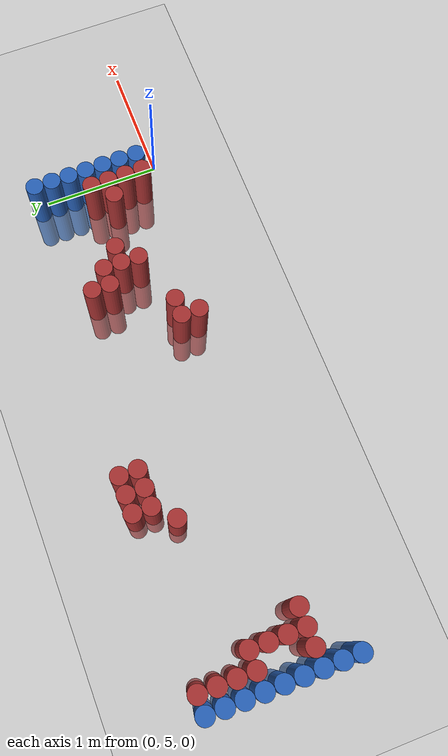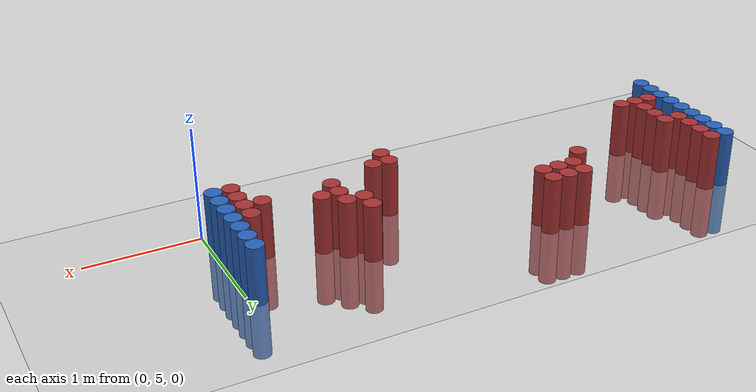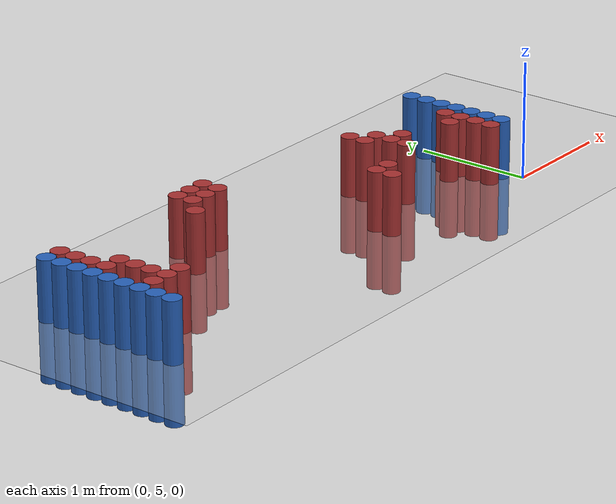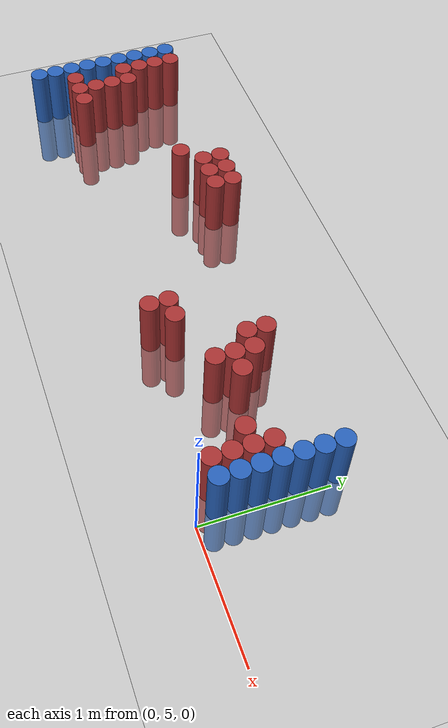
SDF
<sdf version="1.6">
 <world name="default">
  <model name="ground_plane">
   <static>1</static>
   <link name="link">
    <collision name="collision">
     <geometry><plane><normal>0 0 1</normal><size>100 100</size></plane></geometry>
     <surface><friction><ode><mu>100</mu><mu2>50</mu2></ode></friction></surface>
    </collision>
    <visual name="visual">
     <cast_shadows>0</cast_shadows>
     <geometry><plane><normal>0 0 1</normal><size>100 100</size></plane></geometry>
     <material>
      <script><uri>file://media/materials/scripts/gazebo.material</uri><name>Gazebo/Grey</name></script>
     </material>
    </visual>
   </link>
  </model>
  <model name="unit_cylinder_95">
   <static>1</static>
   <pose>-4.425000 5.025000 0.000000 0.000000 0.000000 0.000000</pose>
   <link name="link">
    <inertial>
     <mass>1</mass>
     <inertia><ixx>0.145833</ixx><ixy>0</ixy><ixz>0</ixz><iyy>0.145833</iyy><iyz>0</iyz><izz>0.125</izz></inertia>
    </inertial>
    <collision name="collision">
     <geometry><cylinder><radius>0.075000</radius><length>1</length></cylinder></geometry>
    </collision>
    <visual name="visual">
     <geometry><cylinder><radius>0.075000</radius><length>1</length></cylinder></geometry>
     <material>
      <ambient>0.152000 0.379000 0.720000 1</ambient>
      <diffuse>0.152000 0.379000 0.720000 1</diffuse>
     </material>
     <material>
      <script><name>Gazebo/Grey</name><uri>file://media/materials/scripts/gazebo.material</uri></script>
     </material>
    </visual>
   </link>
  </model>
  <model name="unit_cylinder_96">
   <static>1</static>
   <pose>-4.425000 5.175000 0.000000 0.000000 0.000000 0.000000</pose>
   <link name="link">
    <inertial>
     <mass>1</mass>
     <inertia><ixx>0.145833</ixx><ixy>0</ixy><ixz>0</ixz><iyy>0.145833</iyy><iyz>0</iyz><izz>0.125</izz></inertia>
    </inertial>
    <collision name="collision">
     <geometry><cylinder><radius>0.075000</radius><length>1</length></cylinder></geometry>
    </collision>
    <visual name="visual">
     <geometry><cylinder><radius>0.075000</radius><length>1</length></cylinder></geometry>
     <material>
      <ambient>0.152000 0.379000 0.720000 1</ambient>
      <diffuse>0.152000 0.379000 0.720000 1</diffuse>
     </material>
     <material>
      <script><name>Gazebo/Grey</name><uri>file://media/materials/scripts/gazebo.material</uri></script>
     </material>
    </visual>
   </link>
  </model>
  <model name="unit_cylinder_97">
   <static>1</static>
   <pose>-4.425000 5.325000 0.000000 0.000000 0.000000 0.000000</pose>
   <link name="link">
    <inertial>
     <mass>1</mass>
     <inertia><ixx>0.145833</ixx><ixy>0</ixy><ixz>0</ixz><iyy>0.145833</iyy><iyz>0</iyz><izz>0.125</izz></inertia>
    </inertial>
    <collision name="collision">
     <geometry><cylinder><radius>0.075000</radius><length>1</length></cylinder></geometry>
    </collision>
    <visual name="visual">
     <geometry><cylinder><radius>0.075000</radius><length>1</length></cylinder></geometry>
     <material>
      <ambient>0.152000 0.379000 0.720000 1</ambient>
      <diffuse>0.152000 0.379000 0.720000 1</diffuse>
     </material>
     <material>
      <script><name>Gazebo/Grey</name><uri>file://media/materials/scripts/gazebo.material</uri></script>
     </material>
    </visual>
   </link>
  </model>
  <model name="unit_cylinder_98">
   <static>1</static>
   <pose>-4.425000 5.475000 0.000000 0.000000 0.000000 0.000000</pose>
   <link name="link">
    <inertial>
     <mass>1</mass>
     <inertia><ixx>0.145833</ixx><ixy>0</ixy><ixz>0</ixz><iyy>0.145833</iyy><iyz>0</iyz><izz>0.125</izz></inertia>
    </inertial>
    <collision name="collision">
     <geometry><cylinder><radius>0.075000</radius><length>1</length></cylinder></geometry>
    </collision>
    <visual name="visual">
     <geometry><cylinder><radius>0.075000</radius><length>1</length></cylinder></geometry>
     <material>
      <ambient>0.152000 0.379000 0.720000 1</ambient>
      <diffuse>0.152000 0.379000 0.720000 1</diffuse>
     </material>
     <material>
      <script><name>Gazebo/Grey</name><uri>file://media/materials/scripts/gazebo.material</uri></script>
     </material>
    </visual>
   </link>
  </model>
  <model name="unit_cylinder_99">
   <static>1</static>
   <pose>-4.425000 5.625000 0.000000 0.000000 0.000000 0.000000</pose>
   <link name="link">
    <inertial>
     <mass>1</mass>
     <inertia><ixx>0.145833</ixx><ixy>0</ixy><ixz>0</ixz><iyy>0.145833</iyy><iyz>0</iyz><izz>0.125</izz></inertia>
    </inertial>
    <collision name="collision">
     <geometry><cylinder><radius>0.075000</radius><length>1</length></cylinder></geometry>
    </collision>
    <visual name="visual">
     <geometry><cylinder><radius>0.075000</radius><length>1</length></cylinder></geometry>
     <material>
      <ambient>0.152000 0.379000 0.720000 1</ambient>
      <diffuse>0.152000 0.379000 0.720000 1</diffuse>
     </material>
     <material>
      <script><name>Gazebo/Grey</name><uri>file://media/materials/scripts/gazebo.material</uri></script>
     </material>
    </visual>
   </link>
  </model>
  <model name="unit_cylinder_100">
   <static>1</static>
   <pose>-4.425000 5.775000 0.000000 0.000000 0.000000 0.000000</pose>
   <link name="link">
    <inertial>
     <mass>1</mass>
     <inertia><ixx>0.145833</ixx><ixy>0</ixy><ixz>0</ixz><iyy>0.145833</iyy><iyz>0</iyz><izz>0.125</izz></inertia>
    </inertial>
    <collision name="collision">
     <geometry><cylinder><radius>0.075000</radius><length>1</length></cylinder></geometry>
    </collision>
    <visual name="visual">
     <geometry><cylinder><radius>0.075000</radius><length>1</length></cylinder></geometry>
     <material>
      <ambient>0.152000 0.379000 0.720000 1</ambient>
      <diffuse>0.152000 0.379000 0.720000 1</diffuse>
     </material>
     <material>
      <script><name>Gazebo/Grey</name><uri>file://media/materials/scripts/gazebo.material</uri></script>
     </material>
    </visual>
   </link>
  </model>
  <model name="unit_cylinder_101">
   <static>1</static>
   <pose>-4.425000 5.925000 0.000000 0.000000 0.000000 0.000000</pose>
   <link name="link">
    <inertial>
     <mass>1</mass>
     <inertia><ixx>0.145833</ixx><ixy>0</ixy><ixz>0</ixz><iyy>0.145833</iyy><iyz>0</iyz><izz>0.125</izz></inertia>
    </inertial>
    <collision name="collision">
     <geometry><cylinder><radius>0.075000</radius><length>1</length></cylinder></geometry>
    </collision>
    <visual name="visual">
     <geometry><cylinder><radius>0.075000</radius><length>1</length></cylinder></geometry>
     <material>
      <ambient>0.152000 0.379000 0.720000 1</ambient>
      <diffuse>0.152000 0.379000 0.720000 1</diffuse>
     </material>
     <material>
      <script><name>Gazebo/Grey</name><uri>file://media/materials/scripts/gazebo.material</uri></script>
     </material>
    </visual>
   </link>
  </model>
  <model name="unit_cylinder_102">
   <static>1</static>
   <pose>-4.425000 6.075000 0.000000 0.000000 0.000000 0.000000</pose>
   <link name="link">
    <inertial>
     <mass>1</mass>
     <inertia><ixx>0.145833</ixx><ixy>0</ixy><ixz>0</ixz><iyy>0.145833</iyy><iyz>0</iyz><izz>0.125</izz></inertia>
    </inertial>
    <collision name="collision">
     <geometry><cylinder><radius>0.075000</radius><length>1</length></cylinder></geometry>
    </collision>
    <visual name="visual">
     <geometry><cylinder><radius>0.075000</radius><length>1</length></cylinder></geometry>
     <material>
      <ambient>0.152000 0.379000 0.720000 1</ambient>
      <diffuse>0.152000 0.379000 0.720000 1</diffuse>
     </material>
     <material>
      <script><name>Gazebo/Grey</name><uri>file://media/materials/scripts/gazebo.material</uri></script>
     </material>
    </visual>
   </link>
  </model>
  <model name="unit_cylinder_103">
   <static>1</static>
   <pose>-4.425000 6.225000 0.000000 0.000000 0.000000 0.000000</pose>
   <link name="link">
    <inertial>
     <mass>1</mass>
     <inertia><ixx>0.145833</ixx><ixy>0</ixy><ixz>0</ixz><iyy>0.145833</iyy><iyz>0</iyz><izz>0.125</izz></inertia>
    </inertial>
    <collision name="collision">
     <geometry><cylinder><radius>0.075000</radius><length>1</length></cylinder></geometry>
    </collision>
    <visual name="visual">
     <geometry><cylinder><radius>0.075000</radius><length>1</length></cylinder></geometry>
     <material>
      <ambient>0.152000 0.379000 0.720000 1</ambient>
      <diffuse>0.152000 0.379000 0.720000 1</diffuse>
     </material>
     <material>
      <script><name>Gazebo/Grey</name><uri>file://media/materials/scripts/gazebo.material</uri></script>
     </material>
    </visual>
   </link>
  </model>
  <model name="unit_cylinder_126">
   <static>1</static>
   <pose>-4.275000 5.325000 0.000000 0.000000 0.000000 0.000000</pose>
   <link name="link">
    <inertial>
     <mass>1</mass>
     <inertia><ixx>0.145833</ixx><ixy>0</ixy><ixz>0</ixz><iyy>0.145833</iyy><iyz>0</iyz><izz>0.125</izz></inertia>
    </inertial>
    <collision name="collision">
     <geometry><cylinder><radius>0.075000</radius><length>1</length></cylinder></geometry>
    </collision>
    <visual name="visual">
     <geometry><cylinder><radius>0.075000</radius><length>1</length></cylinder></geometry>
     <material>
      <ambient>0.648000 0.192000 0.192000 1</ambient>
      <diffuse>0.648000 0.192000 0.192000 1</diffuse>
     </material>
     <material>
      <script><name>Gazebo/Grey</name><uri>file://media/materials/scripts/gazebo.material</uri></script>
     </material>
    </visual>
   </link>
  </model>
  <model name="unit_cylinder_127">
   <static>1</static>
   <pose>-4.275000 5.775000 0.000000 0.000000 0.000000 0.000000</pose>
   <link name="link">
    <inertial>
     <mass>1</mass>
     <inertia><ixx>0.145833</ixx><ixy>0</ixy><ixz>0</ixz><iyy>0.145833</iyy><iyz>0</iyz><izz>0.125</izz></inertia>
    </inertial>
    <collision name="collision">
     <geometry><cylinder><radius>0.075000</radius><length>1</length></cylinder></geometry>
    </collision>
    <visual name="visual">
     <geometry><cylinder><radius>0.075000</radius><length>1</length></cylinder></geometry>
     <material>
      <ambient>0.648000 0.192000 0.192000 1</ambient>
      <diffuse>0.648000 0.192000 0.192000 1</diffuse>
     </material>
     <material>
      <script><name>Gazebo/Grey</name><uri>file://media/materials/scripts/gazebo.material</uri></script>
     </material>
    </visual>
   </link>
  </model>
  <model name="unit_cylinder_128">
   <static>1</static>
   <pose>-4.275000 5.925000 0.000000 0.000000 0.000000 0.000000</pose>
   <link name="link">
    <inertial>
     <mass>1</mass>
     <inertia><ixx>0.145833</ixx><ixy>0</ixy><ixz>0</ixz><iyy>0.145833</iyy><iyz>0</iyz><izz>0.125</izz></inertia>
    </inertial>
    <collision name="collision">
     <geometry><cylinder><radius>0.075000</radius><length>1</length></cylinder></geometry>
    </collision>
    <visual name="visual">
     <geometry><cylinder><radius>0.075000</radius><length>1</length></cylinder></geometry>
     <material>
      <ambient>0.648000 0.192000 0.192000 1</ambient>
      <diffuse>0.648000 0.192000 0.192000 1</diffuse>
     </material>
     <material>
      <script><name>Gazebo/Grey</name><uri>file://media/materials/scripts/gazebo.material</uri></script>
     </material>
    </visual>
   </link>
  </model>
  <model name="unit_cylinder_129">
   <static>1</static>
   <pose>-4.275000 6.075000 0.000000 0.000000 0.000000 0.000000</pose>
   <link name="link">
    <inertial>
     <mass>1</mass>
     <inertia><ixx>0.145833</ixx><ixy>0</ixy><ixz>0</ixz><iyy>0.145833</iyy><iyz>0</iyz><izz>0.125</izz></inertia>
    </inertial>
    <collision name="collision">
     <geometry><cylinder><radius>0.075000</radius><length>1</length></cylinder></geometry>
    </collision>
    <visual name="visual">
     <geometry><cylinder><radius>0.075000</radius><length>1</length></cylinder></geometry>
     <material>
      <ambient>0.648000 0.192000 0.192000 1</ambient>
      <diffuse>0.648000 0.192000 0.192000 1</diffuse>
     </material>
     <material>
      <script><name>Gazebo/Grey</name><uri>file://media/materials/scripts/gazebo.material</uri></script>
     </material>
    </visual>
   </link>
  </model>
  <model name="unit_cylinder_130">
   <static>1</static>
   <pose>-4.275000 6.225000 0.000000 0.000000 0.000000 0.000000</pose>
   <link name="link">
    <inertial>
     <mass>1</mass>
     <inertia><ixx>0.145833</ixx><ixy>0</ixy><ixz>0</ixz><iyy>0.145833</iyy><iyz>0</iyz><izz>0.125</izz></inertia>
    </inertial>
    <collision name="collision">
     <geometry><cylinder><radius>0.075000</radius><length>1</length></cylinder></geometry>
    </collision>
    <visual name="visual">
     <geometry><cylinder><radius>0.075000</radius><length>1</length></cylinder></geometry>
     <material>
      <ambient>0.648000 0.192000 0.192000 1</ambient>
      <diffuse>0.648000 0.192000 0.192000 1</diffuse>
     </material>
     <material>
      <script><name>Gazebo/Grey</name><uri>file://media/materials/scripts/gazebo.material</uri></script>
     </material>
    </visual>
   </link>
  </model>
  <model name="unit_cylinder_149">
   <static>1</static>
   <pose>-4.125000 5.325000 0.000000 0.000000 0.000000 0.000000</pose>
   <link name="link">
    <inertial>
     <mass>1</mass>
     <inertia><ixx>0.145833</ixx><ixy>0</ixy><ixz>0</ixz><iyy>0.145833</iyy><iyz>0</iyz><izz>0.125</izz></inertia>
    </inertial>
    <collision name="collision">
     <geometry><cylinder><radius>0.075000</radius><length>1</length></cylinder></geometry>
    </collision>
    <visual name="visual">
     <geometry><cylinder><radius>0.075000</radius><length>1</length></cylinder></geometry>
     <material>
      <ambient>0.648000 0.192000 0.192000 1</ambient>
      <diffuse>0.648000 0.192000 0.192000 1</diffuse>
     </material>
     <material>
      <script><name>Gazebo/Grey</name><uri>file://media/materials/scripts/gazebo.material</uri></script>
     </material>
    </visual>
   </link>
  </model>
  <model name="unit_cylinder_150">
   <static>1</static>
   <pose>-4.125000 5.475000 0.000000 0.000000 0.000000 0.000000</pose>
   <link name="link">
    <inertial>
     <mass>1</mass>
     <inertia><ixx>0.145833</ixx><ixy>0</ixy><ixz>0</ixz><iyy>0.145833</iyy><iyz>0</iyz><izz>0.125</izz></inertia>
    </inertial>
    <collision name="collision">
     <geometry><cylinder><radius>0.075000</radius><length>1</length></cylinder></geometry>
    </collision>
    <visual name="visual">
     <geometry><cylinder><radius>0.075000</radius><length>1</length></cylinder></geometry>
     <material>
      <ambient>0.648000 0.192000 0.192000 1</ambient>
      <diffuse>0.648000 0.192000 0.192000 1</diffuse>
     </material>
     <material>
      <script><name>Gazebo/Grey</name><uri>file://media/materials/scripts/gazebo.material</uri></script>
     </material>
    </visual>
   </link>
  </model>
  <model name="unit_cylinder_151">
   <static>1</static>
   <pose>-4.125000 5.625000 0.000000 0.000000 0.000000 0.000000</pose>
   <link name="link">
    <inertial>
     <mass>1</mass>
     <inertia><ixx>0.145833</ixx><ixy>0</ixy><ixz>0</ixz><iyy>0.145833</iyy><iyz>0</iyz><izz>0.125</izz></inertia>
    </inertial>
    <collision name="collision">
     <geometry><cylinder><radius>0.075000</radius><length>1</length></cylinder></geometry>
    </collision>
    <visual name="visual">
     <geometry><cylinder><radius>0.075000</radius><length>1</length></cylinder></geometry>
     <material>
      <ambient>0.648000 0.192000 0.192000 1</ambient>
      <diffuse>0.648000 0.192000 0.192000 1</diffuse>
     </material>
     <material>
      <script><name>Gazebo/Grey</name><uri>file://media/materials/scripts/gazebo.material</uri></script>
     </material>
    </visual>
   </link>
  </model>
  <model name="unit_cylinder_152">
   <static>1</static>
   <pose>-4.125000 5.775000 0.000000 0.000000 0.000000 0.000000</pose>
   <link name="link">
    <inertial>
     <mass>1</mass>
     <inertia><ixx>0.145833</ixx><ixy>0</ixy><ixz>0</ixz><iyy>0.145833</iyy><iyz>0</iyz><izz>0.125</izz></inertia>
    </inertial>
    <collision name="collision">
     <geometry><cylinder><radius>0.075000</radius><length>1</length></cylinder></geometry>
    </collision>
    <visual name="visual">
     <geometry><cylinder><radius>0.075000</radius><length>1</length></cylinder></geometry>
     <material>
      <ambient>0.648000 0.192000 0.192000 1</ambient>
      <diffuse>0.648000 0.192000 0.192000 1</diffuse>
     </material>
     <material>
      <script><name>Gazebo/Grey</name><uri>file://media/materials/scripts/gazebo.material</uri></script>
     </material>
    </visual>
   </link>
  </model>
  <model name="unit_cylinder_156">
   <static>1</static>
   <pose>-3.975000 5.325000 0.000000 0.000000 0.000000 0.000000</pose>
   <link name="link">
    <inertial>
     <mass>1</mass>
     <inertia><ixx>0.145833</ixx><ixy>0</ixy><ixz>0</ixz><iyy>0.145833</iyy><iyz>0</iyz><izz>0.125</izz></inertia>
    </inertial>
    <collision name="collision">
     <geometry><cylinder><radius>0.075000</radius><length>1</length></cylinder></geometry>
    </collision>
    <visual name="visual">
     <geometry><cylinder><radius>0.075000</radius><length>1</length></cylinder></geometry>
     <material>
      <ambient>0.648000 0.192000 0.192000 1</ambient>
      <diffuse>0.648000 0.192000 0.192000 1</diffuse>
     </material>
     <material>
      <script><name>Gazebo/Grey</name><uri>file://media/materials/scripts/gazebo.material</uri></script>
     </material>
    </visual>
   </link>
  </model>
  <model name="unit_cylinder_168">
   <static>1</static>
   <pose>-3.075000 5.925000 0.000000 0.000000 0.000000 0.000000</pose>
   <link name="link">
    <inertial>
     <mass>1</mass>
     <inertia><ixx>0.145833</ixx><ixy>0</ixy><ixz>0</ixz><iyy>0.145833</iyy><iyz>0</iyz><izz>0.125</izz></inertia>
    </inertial>
    <collision name="collision">
     <geometry><cylinder><radius>0.075000</radius><length>1</length></cylinder></geometry>
    </collision>
    <visual name="visual">
     <geometry><cylinder><radius>0.075000</radius><length>1</length></cylinder></geometry>
     <material>
      <ambient>0.648000 0.192000 0.192000 1</ambient>
      <diffuse>0.648000 0.192000 0.192000 1</diffuse>
     </material>
     <material>
      <script><name>Gazebo/Grey</name><uri>file://media/materials/scripts/gazebo.material</uri></script>
     </material>
    </visual>
   </link>
  </model>
  <model name="unit_cylinder_173">
   <static>1</static>
   <pose>-2.925000 6.075000 0.000000 0.000000 0.000000 0.000000</pose>
   <link name="link">
    <inertial>
     <mass>1</mass>
     <inertia><ixx>0.145833</ixx><ixy>0</ixy><ixz>0</ixz><iyy>0.145833</iyy><iyz>0</iyz><izz>0.125</izz></inertia>
    </inertial>
    <collision name="collision">
     <geometry><cylinder><radius>0.075000</radius><length>1</length></cylinder></geometry>
    </collision>
    <visual name="visual">
     <geometry><cylinder><radius>0.075000</radius><length>1</length></cylinder></geometry>
     <material>
      <ambient>0.648000 0.192000 0.192000 1</ambient>
      <diffuse>0.648000 0.192000 0.192000 1</diffuse>
     </material>
     <material>
      <script><name>Gazebo/Grey</name><uri>file://media/materials/scripts/gazebo.material</uri></script>
     </material>
    </visual>
   </link>
  </model>
  <model name="unit_cylinder_174">
   <static>1</static>
   <pose>-2.925000 6.225000 0.000000 0.000000 0.000000 0.000000</pose>
   <link name="link">
    <inertial>
     <mass>1</mass>
     <inertia><ixx>0.145833</ixx><ixy>0</ixy><ixz>0</ixz><iyy>0.145833</iyy><iyz>0</iyz><izz>0.125</izz></inertia>
    </inertial>
    <collision name="collision">
     <geometry><cylinder><radius>0.075000</radius><length>1</length></cylinder></geometry>
    </collision>
    <visual name="visual">
     <geometry><cylinder><radius>0.075000</radius><length>1</length></cylinder></geometry>
     <material>
      <ambient>0.648000 0.192000 0.192000 1</ambient>
      <diffuse>0.648000 0.192000 0.192000 1</diffuse>
     </material>
     <material>
      <script><name>Gazebo/Grey</name><uri>file://media/materials/scripts/gazebo.material</uri></script>
     </material>
    </visual>
   </link>
  </model>
  <model name="unit_cylinder_178">
   <static>1</static>
   <pose>-2.775000 6.075000 0.000000 0.000000 0.000000 0.000000</pose>
   <link name="link">
    <inertial>
     <mass>1</mass>
     <inertia><ixx>0.145833</ixx><ixy>0</ixy><ixz>0</ixz><iyy>0.145833</iyy><iyz>0</iyz><izz>0.125</izz></inertia>
    </inertial>
    <collision name="collision">
     <geometry><cylinder><radius>0.075000</radius><length>1</length></cylinder></geometry>
    </collision>
    <visual name="visual">
     <geometry><cylinder><radius>0.075000</radius><length>1</length></cylinder></geometry>
     <material>
      <ambient>0.648000 0.192000 0.192000 1</ambient>
      <diffuse>0.648000 0.192000 0.192000 1</diffuse>
     </material>
     <material>
      <script><name>Gazebo/Grey</name><uri>file://media/materials/scripts/gazebo.material</uri></script>
     </material>
    </visual>
   </link>
  </model>
  <model name="unit_cylinder_179">
   <static>1</static>
   <pose>-2.775000 6.225000 0.000000 0.000000 0.000000 0.000000</pose>
   <link name="link">
    <inertial>
     <mass>1</mass>
     <inertia><ixx>0.145833</ixx><ixy>0</ixy><ixz>0</ixz><iyy>0.145833</iyy><iyz>0</iyz><izz>0.125</izz></inertia>
    </inertial>
    <collision name="collision">
     <geometry><cylinder><radius>0.075000</radius><length>1</length></cylinder></geometry>
    </collision>
    <visual name="visual">
     <geometry><cylinder><radius>0.075000</radius><length>1</length></cylinder></geometry>
     <material>
      <ambient>0.648000 0.192000 0.192000 1</ambient>
      <diffuse>0.648000 0.192000 0.192000 1</diffuse>
     </material>
     <material>
      <script><name>Gazebo/Grey</name><uri>file://media/materials/scripts/gazebo.material</uri></script>
     </material>
    </visual>
   </link>
  </model>
  <model name="unit_cylinder_186">
   <static>1</static>
   <pose>-2.625000 6.075000 0.000000 0.000000 0.000000 0.000000</pose>
   <link name="link">
    <inertial>
     <mass>1</mass>
     <inertia><ixx>0.145833</ixx><ixy>0</ixy><ixz>0</ixz><iyy>0.145833</iyy><iyz>0</iyz><izz>0.125</izz></inertia>
    </inertial>
    <collision name="collision">
     <geometry><cylinder><radius>0.075000</radius><length>1</length></cylinder></geometry>
    </collision>
    <visual name="visual">
     <geometry><cylinder><radius>0.075000</radius><length>1</length></cylinder></geometry>
     <material>
      <ambient>0.648000 0.192000 0.192000 1</ambient>
      <diffuse>0.648000 0.192000 0.192000 1</diffuse>
     </material>
     <material>
      <script><name>Gazebo/Grey</name><uri>file://media/materials/scripts/gazebo.material</uri></script>
     </material>
    </visual>
   </link>
  </model>
  <model name="unit_cylinder_187">
   <static>1</static>
   <pose>-2.625000 6.225000 0.000000 0.000000 0.000000 0.000000</pose>
   <link name="link">
    <inertial>
     <mass>1</mass>
     <inertia><ixx>0.145833</ixx><ixy>0</ixy><ixz>0</ixz><iyy>0.145833</iyy><iyz>0</iyz><izz>0.125</izz></inertia>
    </inertial>
    <collision name="collision">
     <geometry><cylinder><radius>0.075000</radius><length>1</length></cylinder></geometry>
    </collision>
    <visual name="visual">
     <geometry><cylinder><radius>0.075000</radius><length>1</length></cylinder></geometry>
     <material>
      <ambient>0.648000 0.192000 0.192000 1</ambient>
      <diffuse>0.648000 0.192000 0.192000 1</diffuse>
     </material>
     <material>
      <script><name>Gazebo/Grey</name><uri>file://media/materials/scripts/gazebo.material</uri></script>
     </material>
    </visual>
   </link>
  </model>
  <model name="unit_cylinder_211">
   <static>1</static>
   <pose>-1.575000 5.175000 0.000000 0.000000 0.000000 0.000000</pose>
   <link name="link">
    <inertial>
     <mass>1</mass>
     <inertia><ixx>0.145833</ixx><ixy>0</ixy><ixz>0</ixz><iyy>0.145833</iyy><iyz>0</iyz><izz>0.125</izz></inertia>
    </inertial>
    <collision name="collision">
     <geometry><cylinder><radius>0.075000</radius><length>1</length></cylinder></geometry>
    </collision>
    <visual name="visual">
     <geometry><cylinder><radius>0.075000</radius><length>1</length></cylinder></geometry>
     <material>
      <ambient>0.648000 0.192000 0.192000 1</ambient>
      <diffuse>0.648000 0.192000 0.192000 1</diffuse>
     </material>
     <material>
      <script><name>Gazebo/Grey</name><uri>file://media/materials/scripts/gazebo.material</uri></script>
     </material>
    </visual>
   </link>
  </model>
  <model name="unit_cylinder_212">
   <static>1</static>
   <pose>-1.575000 5.325000 0.000000 0.000000 0.000000 0.000000</pose>
   <link name="link">
    <inertial>
     <mass>1</mass>
     <inertia><ixx>0.145833</ixx><ixy>0</ixy><ixz>0</ixz><iyy>0.145833</iyy><iyz>0</iyz><izz>0.125</izz></inertia>
    </inertial>
    <collision name="collision">
     <geometry><cylinder><radius>0.075000</radius><length>1</length></cylinder></geometry>
    </collision>
    <visual name="visual">
     <geometry><cylinder><radius>0.075000</radius><length>1</length></cylinder></geometry>
     <material>
      <ambient>0.648000 0.192000 0.192000 1</ambient>
      <diffuse>0.648000 0.192000 0.192000 1</diffuse>
     </material>
     <material>
      <script><name>Gazebo/Grey</name><uri>file://media/materials/scripts/gazebo.material</uri></script>
     </material>
    </visual>
   </link>
  </model>
  <model name="unit_cylinder_213">
   <static>1</static>
   <pose>-1.425000 5.325000 0.000000 0.000000 0.000000 0.000000</pose>
   <link name="link">
    <inertial>
     <mass>1</mass>
     <inertia><ixx>0.145833</ixx><ixy>0</ixy><ixz>0</ixz><iyy>0.145833</iyy><iyz>0</iyz><izz>0.125</izz></inertia>
    </inertial>
    <collision name="collision">
     <geometry><cylinder><radius>0.075000</radius><length>1</length></cylinder></geometry>
    </collision>
    <visual name="visual">
     <geometry><cylinder><radius>0.075000</radius><length>1</length></cylinder></geometry>
     <material>
      <ambient>0.648000 0.192000 0.192000 1</ambient>
      <diffuse>0.648000 0.192000 0.192000 1</diffuse>
     </material>
     <material>
      <script><name>Gazebo/Grey</name><uri>file://media/materials/scripts/gazebo.material</uri></script>
     </material>
    </visual>
   </link>
  </model>
  <model name="unit_cylinder_214">
   <static>1</static>
   <pose>-1.125000 5.775000 0.000000 0.000000 0.000000 0.000000</pose>
   <link name="link">
    <inertial>
     <mass>1</mass>
     <inertia><ixx>0.145833</ixx><ixy>0</ixy><ixz>0</ixz><iyy>0.145833</iyy><iyz>0</iyz><izz>0.125</izz></inertia>
    </inertial>
    <collision name="collision">
     <geometry><cylinder><radius>0.075000</radius><length>1</length></cylinder></geometry>
    </collision>
    <visual name="visual">
     <geometry><cylinder><radius>0.075000</radius><length>1</length></cylinder></geometry>
     <material>
      <ambient>0.648000 0.192000 0.192000 1</ambient>
      <diffuse>0.648000 0.192000 0.192000 1</diffuse>
     </material>
     <material>
      <script><name>Gazebo/Grey</name><uri>file://media/materials/scripts/gazebo.material</uri></script>
     </material>
    </visual>
   </link>
  </model>
  <model name="unit_cylinder_215">
   <static>1</static>
   <pose>-1.125000 5.925000 0.000000 0.000000 0.000000 0.000000</pose>
   <link name="link">
    <inertial>
     <mass>1</mass>
     <inertia><ixx>0.145833</ixx><ixy>0</ixy><ixz>0</ixz><iyy>0.145833</iyy><iyz>0</iyz><izz>0.125</izz></inertia>
    </inertial>
    <collision name="collision">
     <geometry><cylinder><radius>0.075000</radius><length>1</length></cylinder></geometry>
    </collision>
    <visual name="visual">
     <geometry><cylinder><radius>0.075000</radius><length>1</length></cylinder></geometry>
     <material>
      <ambient>0.648000 0.192000 0.192000 1</ambient>
      <diffuse>0.648000 0.192000 0.192000 1</diffuse>
     </material>
     <material>
      <script><name>Gazebo/Grey</name><uri>file://media/materials/scripts/gazebo.material</uri></script>
     </material>
    </visual>
   </link>
  </model>
  <model name="unit_cylinder_216">
   <static>1</static>
   <pose>-0.975000 5.475000 0.000000 0.000000 0.000000 0.000000</pose>
   <link name="link">
    <inertial>
     <mass>1</mass>
     <inertia><ixx>0.145833</ixx><ixy>0</ixy><ixz>0</ixz><iyy>0.145833</iyy><iyz>0</iyz><izz>0.125</izz></inertia>
    </inertial>
    <collision name="collision">
     <geometry><cylinder><radius>0.075000</radius><length>1</length></cylinder></geometry>
    </collision>
    <visual name="visual">
     <geometry><cylinder><radius>0.075000</radius><length>1</length></cylinder></geometry>
     <material>
      <ambient>0.648000 0.192000 0.192000 1</ambient>
      <diffuse>0.648000 0.192000 0.192000 1</diffuse>
     </material>
     <material>
      <script><name>Gazebo/Grey</name><uri>file://media/materials/scripts/gazebo.material</uri></script>
     </material>
    </visual>
   </link>
  </model>
  <model name="unit_cylinder_217">
   <static>1</static>
   <pose>-0.975000 5.625000 0.000000 0.000000 0.000000 0.000000</pose>
   <link name="link">
    <inertial>
     <mass>1</mass>
     <inertia><ixx>0.145833</ixx><ixy>0</ixy><ixz>0</ixz><iyy>0.145833</iyy><iyz>0</iyz><izz>0.125</izz></inertia>
    </inertial>
    <collision name="collision">
     <geometry><cylinder><radius>0.075000</radius><length>1</length></cylinder></geometry>
    </collision>
    <visual name="visual">
     <geometry><cylinder><radius>0.075000</radius><length>1</length></cylinder></geometry>
     <material>
      <ambient>0.648000 0.192000 0.192000 1</ambient>
      <diffuse>0.648000 0.192000 0.192000 1</diffuse>
     </material>
     <material>
      <script><name>Gazebo/Grey</name><uri>file://media/materials/scripts/gazebo.material</uri></script>
     </material>
    </visual>
   </link>
  </model>
  <model name="unit_cylinder_218">
   <static>1</static>
   <pose>-0.975000 5.775000 0.000000 0.000000 0.000000 0.000000</pose>
   <link name="link">
    <inertial>
     <mass>1</mass>
     <inertia><ixx>0.145833</ixx><ixy>0</ixy><ixz>0</ixz><iyy>0.145833</iyy><iyz>0</iyz><izz>0.125</izz></inertia>
    </inertial>
    <collision name="collision">
     <geometry><cylinder><radius>0.075000</radius><length>1</length></cylinder></geometry>
    </collision>
    <visual name="visual">
     <geometry><cylinder><radius>0.075000</radius><length>1</length></cylinder></geometry>
     <material>
      <ambient>0.648000 0.192000 0.192000 1</ambient>
      <diffuse>0.648000 0.192000 0.192000 1</diffuse>
     </material>
     <material>
      <script><name>Gazebo/Grey</name><uri>file://media/materials/scripts/gazebo.material</uri></script>
     </material>
    </visual>
   </link>
  </model>
  <model name="unit_cylinder_225">
   <static>1</static>
   <pose>-0.825000 5.625000 0.000000 0.000000 0.000000 0.000000</pose>
   <link name="link">
    <inertial>
     <mass>1</mass>
     <inertia><ixx>0.145833</ixx><ixy>0</ixy><ixz>0</ixz><iyy>0.145833</iyy><iyz>0</iyz><izz>0.125</izz></inertia>
    </inertial>
    <collision name="collision">
     <geometry><cylinder><radius>0.075000</radius><length>1</length></cylinder></geometry>
    </collision>
    <visual name="visual">
     <geometry><cylinder><radius>0.075000</radius><length>1</length></cylinder></geometry>
     <material>
      <ambient>0.648000 0.192000 0.192000 1</ambient>
      <diffuse>0.648000 0.192000 0.192000 1</diffuse>
     </material>
     <material>
      <script><name>Gazebo/Grey</name><uri>file://media/materials/scripts/gazebo.material</uri></script>
     </material>
    </visual>
   </link>
  </model>
  <model name="unit_cylinder_242">
   <static>1</static>
   <pose>-0.375000 5.475000 0.000000 0.000000 0.000000 0.000000</pose>
   <link name="link">
    <inertial>
     <mass>1</mass>
     <inertia><ixx>0.145833</ixx><ixy>0</ixy><ixz>0</ixz><iyy>0.145833</iyy><iyz>0</iyz><izz>0.125</izz></inertia>
    </inertial>
    <collision name="collision">
     <geometry><cylinder><radius>0.075000</radius><length>1</length></cylinder></geometry>
    </collision>
    <visual name="visual">
     <geometry><cylinder><radius>0.075000</radius><length>1</length></cylinder></geometry>
     <material>
      <ambient>0.648000 0.192000 0.192000 1</ambient>
      <diffuse>0.648000 0.192000 0.192000 1</diffuse>
     </material>
     <material>
      <script><name>Gazebo/Grey</name><uri>file://media/materials/scripts/gazebo.material</uri></script>
     </material>
    </visual>
   </link>
  </model>
  <model name="unit_cylinder_247">
   <static>1</static>
   <pose>-0.225000 5.175000 0.000000 0.000000 0.000000 0.000000</pose>
   <link name="link">
    <inertial>
     <mass>1</mass>
     <inertia><ixx>0.145833</ixx><ixy>0</ixy><ixz>0</ixz><iyy>0.145833</iyy><iyz>0</iyz><izz>0.125</izz></inertia>
    </inertial>
    <collision name="collision">
     <geometry><cylinder><radius>0.075000</radius><length>1</length></cylinder></geometry>
    </collision>
    <visual name="visual">
     <geometry><cylinder><radius>0.075000</radius><length>1</length></cylinder></geometry>
     <material>
      <ambient>0.648000 0.192000 0.192000 1</ambient>
      <diffuse>0.648000 0.192000 0.192000 1</diffuse>
     </material>
     <material>
      <script><name>Gazebo/Grey</name><uri>file://media/materials/scripts/gazebo.material</uri></script>
     </material>
    </visual>
   </link>
  </model>
  <model name="unit_cylinder_248">
   <static>1</static>
   <pose>-0.225000 5.325000 0.000000 0.000000 0.000000 0.000000</pose>
   <link name="link">
    <inertial>
     <mass>1</mass>
     <inertia><ixx>0.145833</ixx><ixy>0</ixy><ixz>0</ixz><iyy>0.145833</iyy><iyz>0</iyz><izz>0.125</izz></inertia>
    </inertial>
    <collision name="collision">
     <geometry><cylinder><radius>0.075000</radius><length>1</length></cylinder></geometry>
    </collision>
    <visual name="visual">
     <geometry><cylinder><radius>0.075000</radius><length>1</length></cylinder></geometry>
     <material>
      <ambient>0.648000 0.192000 0.192000 1</ambient>
      <diffuse>0.648000 0.192000 0.192000 1</diffuse>
     </material>
     <material>
      <script><name>Gazebo/Grey</name><uri>file://media/materials/scripts/gazebo.material</uri></script>
     </material>
    </visual>
   </link>
  </model>
  <model name="unit_cylinder_249">
   <static>1</static>
   <pose>-0.225000 5.475000 0.000000 0.000000 0.000000 0.000000</pose>
   <link name="link">
    <inertial>
     <mass>1</mass>
     <inertia><ixx>0.145833</ixx><ixy>0</ixy><ixz>0</ixz><iyy>0.145833</iyy><iyz>0</iyz><izz>0.125</izz></inertia>
    </inertial>
    <collision name="collision">
     <geometry><cylinder><radius>0.075000</radius><length>1</length></cylinder></geometry>
    </collision>
    <visual name="visual">
     <geometry><cylinder><radius>0.075000</radius><length>1</length></cylinder></geometry>
     <material>
      <ambient>0.648000 0.192000 0.192000 1</ambient>
      <diffuse>0.648000 0.192000 0.192000 1</diffuse>
     </material>
     <material>
      <script><name>Gazebo/Grey</name><uri>file://media/materials/scripts/gazebo.material</uri></script>
     </material>
    </visual>
   </link>
  </model>
  <model name="unit_cylinder_250">
   <static>1</static>
   <pose>-0.225000 5.625000 0.000000 0.000000 0.000000 0.000000</pose>
   <link name="link">
    <inertial>
     <mass>1</mass>
     <inertia><ixx>0.145833</ixx><ixy>0</ixy><ixz>0</ixz><iyy>0.145833</iyy><iyz>0</iyz><izz>0.125</izz></inertia>
    </inertial>
    <collision name="collision">
     <geometry><cylinder><radius>0.075000</radius><length>1</length></cylinder></geometry>
    </collision>
    <visual name="visual">
     <geometry><cylinder><radius>0.075000</radius><length>1</length></cylinder></geometry>
     <material>
      <ambient>0.648000 0.192000 0.192000 1</ambient>
      <diffuse>0.648000 0.192000 0.192000 1</diffuse>
     </material>
     <material>
      <script><name>Gazebo/Grey</name><uri>file://media/materials/scripts/gazebo.material</uri></script>
     </material>
    </visual>
   </link>
  </model>
  <model name="unit_cylinder_255">
   <static>1</static>
   <pose>-0.075000 5.175000 0.000000 0.000000 0.000000 0.000000</pose>
   <link name="link">
    <inertial>
     <mass>1</mass>
     <inertia><ixx>0.145833</ixx><ixy>0</ixy><ixz>0</ixz><iyy>0.145833</iyy><iyz>0</iyz><izz>0.125</izz></inertia>
    </inertial>
    <collision name="collision">
     <geometry><cylinder><radius>0.075000</radius><length>1</length></cylinder></geometry>
    </collision>
    <visual name="visual">
     <geometry><cylinder><radius>0.075000</radius><length>1</length></cylinder></geometry>
     <material>
      <ambient>0.152000 0.379000 0.720000 1</ambient>
      <diffuse>0.152000 0.379000 0.720000 1</diffuse>
     </material>
     <material>
      <script><name>Gazebo/Grey</name><uri>file://media/materials/scripts/gazebo.material</uri></script>
     </material>
    </visual>
   </link>
  </model>
  <model name="unit_cylinder_256">
   <static>1</static>
   <pose>-0.075000 5.325000 0.000000 0.000000 0.000000 0.000000</pose>
   <link name="link">
    <inertial>
     <mass>1</mass>
     <inertia><ixx>0.145833</ixx><ixy>0</ixy><ixz>0</ixz><iyy>0.145833</iyy><iyz>0</iyz><izz>0.125</izz></inertia>
    </inertial>
    <collision name="collision">
     <geometry><cylinder><radius>0.075000</radius><length>1</length></cylinder></geometry>
    </collision>
    <visual name="visual">
     <geometry><cylinder><radius>0.075000</radius><length>1</length></cylinder></geometry>
     <material>
      <ambient>0.152000 0.379000 0.720000 1</ambient>
      <diffuse>0.152000 0.379000 0.720000 1</diffuse>
     </material>
     <material>
      <script><name>Gazebo/Grey</name><uri>file://media/materials/scripts/gazebo.material</uri></script>
     </material>
    </visual>
   </link>
  </model>
  <model name="unit_cylinder_257">
   <static>1</static>
   <pose>-0.075000 5.475000 0.000000 0.000000 0.000000 0.000000</pose>
   <link name="link">
    <inertial>
     <mass>1</mass>
     <inertia><ixx>0.145833</ixx><ixy>0</ixy><ixz>0</ixz><iyy>0.145833</iyy><iyz>0</iyz><izz>0.125</izz></inertia>
    </inertial>
    <collision name="collision">
     <geometry><cylinder><radius>0.075000</radius><length>1</length></cylinder></geometry>
    </collision>
    <visual name="visual">
     <geometry><cylinder><radius>0.075000</radius><length>1</length></cylinder></geometry>
     <material>
      <ambient>0.152000 0.379000 0.720000 1</ambient>
      <diffuse>0.152000 0.379000 0.720000 1</diffuse>
     </material>
     <material>
      <script><name>Gazebo/Grey</name><uri>file://media/materials/scripts/gazebo.material</uri></script>
     </material>
    </visual>
   </link>
  </model>
  <model name="unit_cylinder_258">
   <static>1</static>
   <pose>-0.075000 5.625000 0.000000 0.000000 0.000000 0.000000</pose>
   <link name="link">
    <inertial>
     <mass>1</mass>
     <inertia><ixx>0.145833</ixx><ixy>0</ixy><ixz>0</ixz><iyy>0.145833</iyy><iyz>0</iyz><izz>0.125</izz></inertia>
    </inertial>
    <collision name="collision">
     <geometry><cylinder><radius>0.075000</radius><length>1</length></cylinder></geometry>
    </collision>
    <visual name="visual">
     <geometry><cylinder><radius>0.075000</radius><length>1</length></cylinder></geometry>
     <material>
      <ambient>0.152000 0.379000 0.720000 1</ambient>
      <diffuse>0.152000 0.379000 0.720000 1</diffuse>
     </material>
     <material>
      <script><name>Gazebo/Grey</name><uri>file://media/materials/scripts/gazebo.material</uri></script>
     </material>
    </visual>
   </link>
  </model>
  <model name="unit_cylinder_259">
   <static>1</static>
   <pose>-0.075000 5.775000 0.000000 0.000000 0.000000 0.000000</pose>
   <link name="link">
    <inertial>
     <mass>1</mass>
     <inertia><ixx>0.145833</ixx><ixy>0</ixy><ixz>0</ixz><iyy>0.145833</iyy><iyz>0</iyz><izz>0.125</izz></inertia>
    </inertial>
    <collision name="collision">
     <geometry><cylinder><radius>0.075000</radius><length>1</length></cylinder></geometry>
    </collision>
    <visual name="visual">
     <geometry><cylinder><radius>0.075000</radius><length>1</length></cylinder></geometry>
     <material>
      <ambient>0.152000 0.379000 0.720000 1</ambient>
      <diffuse>0.152000 0.379000 0.720000 1</diffuse>
     </material>
     <material>
      <script><name>Gazebo/Grey</name><uri>file://media/materials/scripts/gazebo.material</uri></script>
     </material>
    </visual>
   </link>
  </model>
  <model name="unit_cylinder_260">
   <static>1</static>
   <pose>-0.075000 5.925000 0.000000 0.000000 0.000000 0.000000</pose>
   <link name="link">
    <inertial>
     <mass>1</mass>
     <inertia><ixx>0.145833</ixx><ixy>0</ixy><ixz>0</ixz><iyy>0.145833</iyy><iyz>0</iyz><izz>0.125</izz></inertia>
    </inertial>
    <collision name="collision">
     <geometry><cylinder><radius>0.075000</radius><length>1</length></cylinder></geometry>
    </collision>
    <visual name="visual">
     <geometry><cylinder><radius>0.075000</radius><length>1</length></cylinder></geometry>
     <material>
      <ambient>0.152000 0.379000 0.720000 1</ambient>
      <diffuse>0.152000 0.379000 0.720000 1</diffuse>
     </material>
     <material>
      <script><name>Gazebo/Grey</name><uri>file://media/materials/scripts/gazebo.material</uri></script>
     </material>
    </visual>
   </link>
  </model>
  <model name="unit_cylinder_261">
   <static>1</static>
   <pose>-0.075000 6.075000 0.000000 0.000000 0.000000 0.000000</pose>
   <link name="link">
    <inertial>
     <mass>1</mass>
     <inertia><ixx>0.145833</ixx><ixy>0</ixy><ixz>0</ixz><iyy>0.145833</iyy><iyz>0</iyz><izz>0.125</izz></inertia>
    </inertial>
    <collision name="collision">
     <geometry><cylinder><radius>0.075000</radius><length>1</length></cylinder></geometry>
    </collision>
    <visual name="visual">
     <geometry><cylinder><radius>0.075000</radius><length>1</length></cylinder></geometry>
     <material>
      <ambient>0.152000 0.379000 0.720000 1</ambient>
      <diffuse>0.152000 0.379000 0.720000 1</diffuse>
     </material>
     <material>
      <script><name>Gazebo/Grey</name><uri>file://media/materials/scripts/gazebo.material</uri></script>
     </material>
    </visual>
   </link>
  </model>
 </world>
</sdf>
